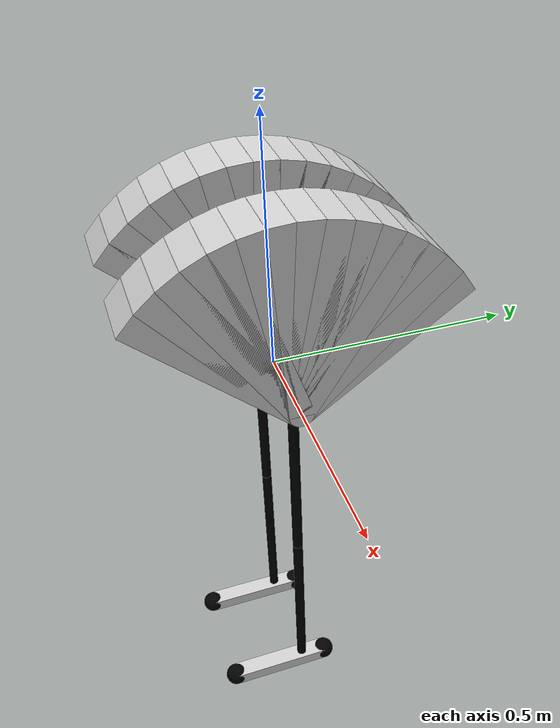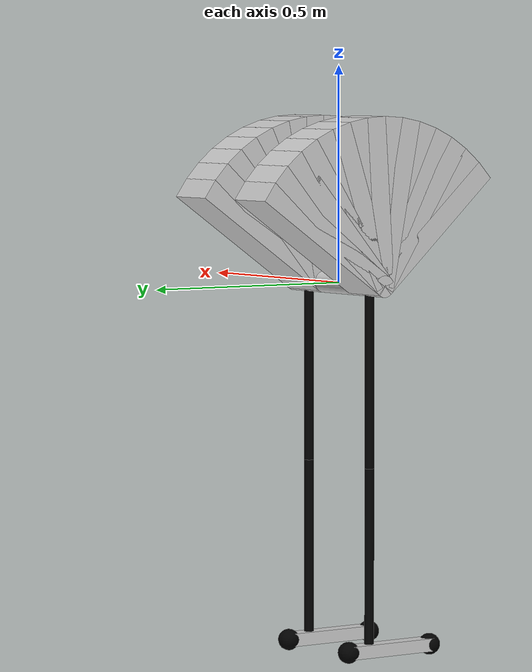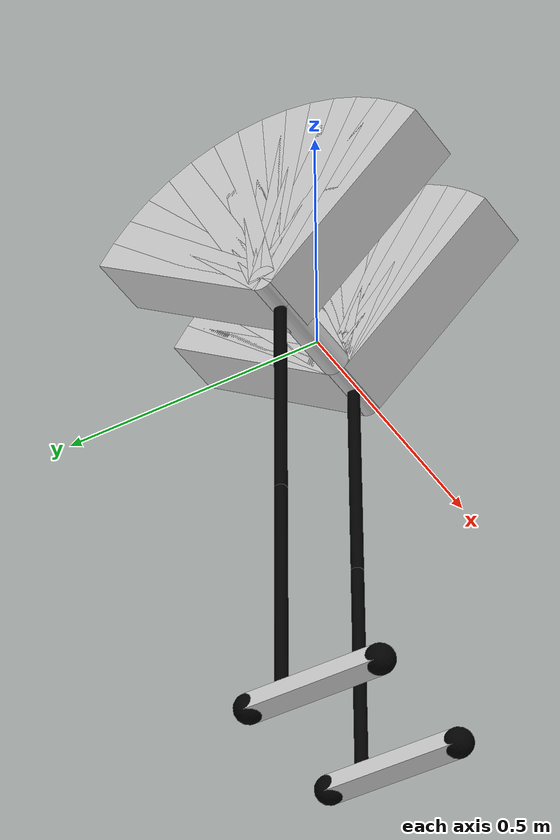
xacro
<?xml version="1.0"?>
<!-- spring_flamingo revision 3 for questions/bugs/etc. email woursler@gmail.com-->
<robot name="spring_flamingo" xmlns:xacro="http://www.ros.org/wiki/xacro">
	<!-- body property xacros -->
	<xacro:property name="BODY_MASS" value="1" />
	<xacro:property name="BODY_CG" value="0 0 0.20" /><!--measured relative to the center of the line connecting the hips-->
	<xacro:property name="FAN_RADIUS" value=".385" />
	<xacro:property name="FAN_THICKNESS" value=".12" />
	<xacro:property name="FAN_MIN_ANGLE" value="0.610865238" />
	<xacro:property name="FAN_INC_ANGLE" value="0.127990812" />
	<xacro:property name="FAN_ELEMENT_WIDTH" value=".05" />
	<xacro:property name="HIP_OFFSET" value="0.12" />

	<!-- upper leg property xacros -->
	<xacro:property name="UPPER_LEG_MASS" value="0.4598" />
	<xacro:property name="UPPER_LEG_Ixx" value="0.01256" />
	<xacro:property name="UPPER_LEG_Iyy" value="0.01256" />
	<xacro:property name="UPPER_LEG_Izz" value="0.00013" />
	<xacro:property name="UPPER_LEG_LENGTH" value="0.42" />
	<xacro:property name="UPPER_LEG_RADIUS" value="0.010875" />

	<!-- lower leg property xacros -->
	<xacro:property name="LOWER_LEG_MASS" value="0.306" />
	<xacro:property name="LOWER_LEG_Ixx" value="0.00952" />
	<xacro:property name="LOWER_LEG_Iyy" value="0.00952" />
	<xacro:property name="LOWER_LEG_Izz" value="0.0000567" />
	<xacro:property name="LOWER_LEG_LENGTH" value="0.42" />
	<xacro:property name="LOWER_LEG_RADIUS" value="0.010875" />

	<!-- foot property xacros -->
	<xacro:property name="FOOT_MASS" value="0.3466" />
	<xacro:property name="FOOT_Ixx" value="0.0000715" />
	<xacro:property name="FOOT_Iyy" value="0.0015" />
	<xacro:property name="FOOT_Izz" value="0.0015" />
	<xacro:property name="FOOT_WIDTH" value="0.04" />
	<xacro:property name="FOOT_LENGTH" value="0.23" />
	<xacro:property name="FOOT_HEIGHT" value="0.03" />
	<xacro:property name="FOOT_OFFSET_PERCENT" value="0.25" />

	<xacro:macro name="strut" params="prefix suffix angle">
		<link name="${prefix}_strut_${suffix}">
			<visual>
				<geometry>
					<box size="${FAN_THICKNESS} ${FAN_RADIUS} ${FAN_ELEMENT_WIDTH}"/>
				</geometry>
				<origin rpy="0 0 0" xyz="0 ${FAN_RADIUS / 2} 0"/>
				<material name="grey">
					<color rgba=".8 .8 .8 1"/>
				</material>
			</visual>
		</link>
		<joint name="${prefix}_fixed_joint_${suffix}" type="fixed">
			<parent link="${prefix}_fan"/>
			<child link="${prefix}_strut_${suffix}"/>
			<origin rpy="${angle} 0 0" xyz="0 0 0"/>
			<axis xyz="0 1 0" />
		</joint>
	</xacro:macro>
	<xacro:macro name="fan" params="prefix offset">
		<link name="${prefix}_fan">
			<visual>
				<geometry>
					<cylinder length="${FAN_THICKNESS}" radius="${FAN_ELEMENT_WIDTH / 2}"/>
				</geometry>
				<origin rpy="0 1.57075 0" xyz="0 0 0"/>
				<material name="grey">
					<color rgba=".8 .8 .8 1"/>
				</material>
			</visual>
		</link>
		<joint name="${prefix}_fan_fixed_joint" type="fixed">
			<parent link="base_link"/>
			<child link="${prefix}_fan"/>
			<origin rpy="0 0 0" xyz="${offset}"/>
			<axis xyz="0 1 0" />
		</joint>
		<!--There has got to be a better way to do this, even without meshes...-->
		<xacro:strut prefix="${prefix}" suffix="1" angle="${FAN_MIN_ANGLE}"/>
		<xacro:strut prefix="${prefix}" suffix="2" angle="${FAN_MIN_ANGLE + FAN_INC_ANGLE}"/>
		<xacro:strut prefix="${prefix}" suffix="3" angle="${FAN_MIN_ANGLE + 2 * FAN_INC_ANGLE}"/>
		<xacro:strut prefix="${prefix}" suffix="4" angle="${FAN_MIN_ANGLE + 3 * FAN_INC_ANGLE}"/>
		<xacro:strut prefix="${prefix}" suffix="5" angle="${FAN_MIN_ANGLE + 4 * FAN_INC_ANGLE}"/>
		<xacro:strut prefix="${prefix}" suffix="6" angle="${FAN_MIN_ANGLE + 5 * FAN_INC_ANGLE}"/>
		<xacro:strut prefix="${prefix}" suffix="7" angle="${FAN_MIN_ANGLE + 6 * FAN_INC_ANGLE}"/>
		<xacro:strut prefix="${prefix}" suffix="8" angle="${FAN_MIN_ANGLE + 7 * FAN_INC_ANGLE}"/>
		<xacro:strut prefix="${prefix}" suffix="9" angle="${FAN_MIN_ANGLE + 8 * FAN_INC_ANGLE}"/>
		<xacro:strut prefix="${prefix}" suffix="10" angle="${FAN_MIN_ANGLE + 9 * FAN_INC_ANGLE}"/>
		<xacro:strut prefix="${prefix}" suffix="11" angle="${FAN_MIN_ANGLE + 10 * FAN_INC_ANGLE}"/>
		<xacro:strut prefix="${prefix}" suffix="12" angle="${FAN_MIN_ANGLE + 11 * FAN_INC_ANGLE}"/>
		<xacro:strut prefix="${prefix}" suffix="13" angle="${FAN_MIN_ANGLE + 12 * FAN_INC_ANGLE}"/>
		<xacro:strut prefix="${prefix}" suffix="14" angle="${FAN_MIN_ANGLE + 13 * FAN_INC_ANGLE}"/>
		<xacro:strut prefix="${prefix}" suffix="15" angle="${FAN_MIN_ANGLE + 14 * FAN_INC_ANGLE}"/>
	</xacro:macro>

	<!-- Encapsulates the body code.-->
	<xacro:macro name="body">
		<link name="base_link">
			<visual>
				<geometry>
					<cylinder length="${ 2 * HIP_OFFSET }" radius="${FAN_ELEMENT_WIDTH / 2}"/>
				</geometry>
				<origin rpy="0 1.57075 0" xyz="0 0 0"/>
				<material name="grey">
					<color rgba=".8 .8 .8 1"/>
				</material>
			</visual>
			<inertial>
				<origin xyz="${BODY_CG}" rpy="0 0 0"/>
				<mass value="${BODY_MASS}"/>
				<inertia ixx="100"  ixy="0"  ixz="0" iyy="100" iyz="0" izz="100" />
			</inertial>
		</link>
		<xacro:fan prefix="left" offset="${HIP_OFFSET} 0 0"/>
		<xacro:fan prefix="right" offset="${ -1 * HIP_OFFSET} 0 0"/>
	</xacro:macro>

	<xacro:body/>

	<!-- Defines a ground contact point xacro-->
	<xacro:macro name="contact_point" params="suffix">
		<link name="${suffix}_contact_point">
			<visual>
				<geometry>
					<sphere radius="0.025"/>
				</geometry>
				<material name="black">
					<color rgba="0 0 0 1"/>
				</material>
			</visual>
			<collision>
				<geometry>
					<sphere radius="0"/>
				</geometry>
			</collision>
		</link>
	</xacro:macro>
	<!-- Defines a leg xacro. Most of the action is here.-->
	<xacro:macro name="leg" params="suffix hip_xyz">
		<link name="${suffix}_upper_leg">
			<visual>
				<geometry>
					<cylinder length="${UPPER_LEG_LENGTH}" radius="${UPPER_LEG_RADIUS}"/>
				</geometry>
				<origin rpy="0 1.57075 0" xyz="${UPPER_LEG_LENGTH / 2} 0 0"/>
				<material name="black">
					<color rgba="0 0 0 1"/>
				</material>
			</visual>
			<inertial>
				<origin xyz="${UPPER_LEG_LENGTH / 2} 0 0" rpy="0 0 0"/>
				<mass value="${UPPER_LEG_MASS}"/>
				<inertia ixx="${UPPER_LEG_Ixx}"  ixy="0"  ixz="0" iyy="${UPPER_LEG_Iyy}" iyz="0" izz="${UPPER_LEG_Izz}" />
			</inertial>
		</link>
		<joint name="${suffix}_hip" type="continuous">
			<parent link="base_link"/>
			<child link="${suffix}_upper_leg"/>
			<origin xyz="${hip_xyz}" rpy="0 1.57075 0"/>
			<axis xyz="0 1 0" />
		</joint>
		<link name="${suffix}_lower_leg">
			<visual>
				<geometry>
					<cylinder length="${LOWER_LEG_LENGTH}" radius="${LOWER_LEG_RADIUS}"/>
				</geometry>
				<origin rpy="0 1.57075 0" xyz="${LOWER_LEG_LENGTH / 2} 0 0"/>
				<material name="black">
					<color rgba="0 0 0 1"/>
				</material>
			</visual>
			<inertial>
				<origin xyz="${LOWER_LEG_LENGTH / 2} 0 0" rpy="0 0 0"/>
				<mass value="${LOWER_LEG_MASS}"/>
				<inertia ixx="${LOWER_LEG_Ixx}"  ixy="0"  ixz="0" iyy="${LOWER_LEG_Iyy}" iyz="0" izz="${LOWER_LEG_Izz}" />
			</inertial>
		</link>
		<joint name="${suffix}_knee" type="continuous">
			<parent link="${suffix}_upper_leg"/>
			<child link="${suffix}_lower_leg"/>
			<origin xyz="${UPPER_LEG_LENGTH} 0 0"/>
			<axis xyz="0 1 0" />
		</joint>
		<link name="${suffix}_foot">
			<visual>
				<geometry>
					<box size="${FOOT_HEIGHT} ${FOOT_LENGTH} ${FOOT_WIDTH}"/>
				</geometry>
				<origin rpy="0 0 0" xyz="0 ${ FOOT_LENGTH * ( FOOT_OFFSET_PERCENT - 0.5 ) } 0"/>
				<material name="grey">
					<color rgba=".8 .8 .8 1"/>
				</material>
			</visual>
			<inertial>
				<origin xyz="0 0 0" rpy="0 0 0"/>
				<mass value="${FOOT_MASS}"/>
				<inertia ixx="${FOOT_Ixx}"  ixy="0"  ixz="0" iyy="${FOOT_Iyy}" iyz="0" izz="${FOOT_Izz}" />
			</inertial>
		</link>
		<joint name="${suffix}_ankle" type="continuous">
			<parent link="${suffix}_lower_leg"/>
			<child link="${suffix}_foot"/>
			<origin xyz="${LOWER_LEG_LENGTH} 0 0"/>
			<axis xyz="0 1 0" />
		</joint>
		<xacro:contact_point suffix="${suffix}_forward"/>
		<xacro:contact_point suffix="${suffix}_rear"/>
		<joint name="${suffix}_j1" type="fixed">
			<parent link="${suffix}_foot"/>
			<child link="${suffix}_forward_contact_point"/>
			<origin xyz="0 ${FOOT_LENGTH * FOOT_OFFSET_PERCENT} 0"/>
			<axis xyz="0 1 0" />
		</joint>
		<joint name="${suffix}_j2" type="fixed">
			<parent link="${suffix}_foot"/>
			<child link="${suffix}_rear_contact_point"/>
			<origin xyz="0 -${ ( 1 -FOOT_OFFSET_PERCENT ) * FOOT_LENGTH } 0"/>
			<axis xyz="0 1 0" />
		</joint>
	</xacro:macro>

	<xacro:leg suffix="right" hip_xyz="${HIP_OFFSET} 0 0"/>
	<xacro:leg suffix="left" hip_xyz="-${HIP_OFFSET} 0 0"/>
</robot>
